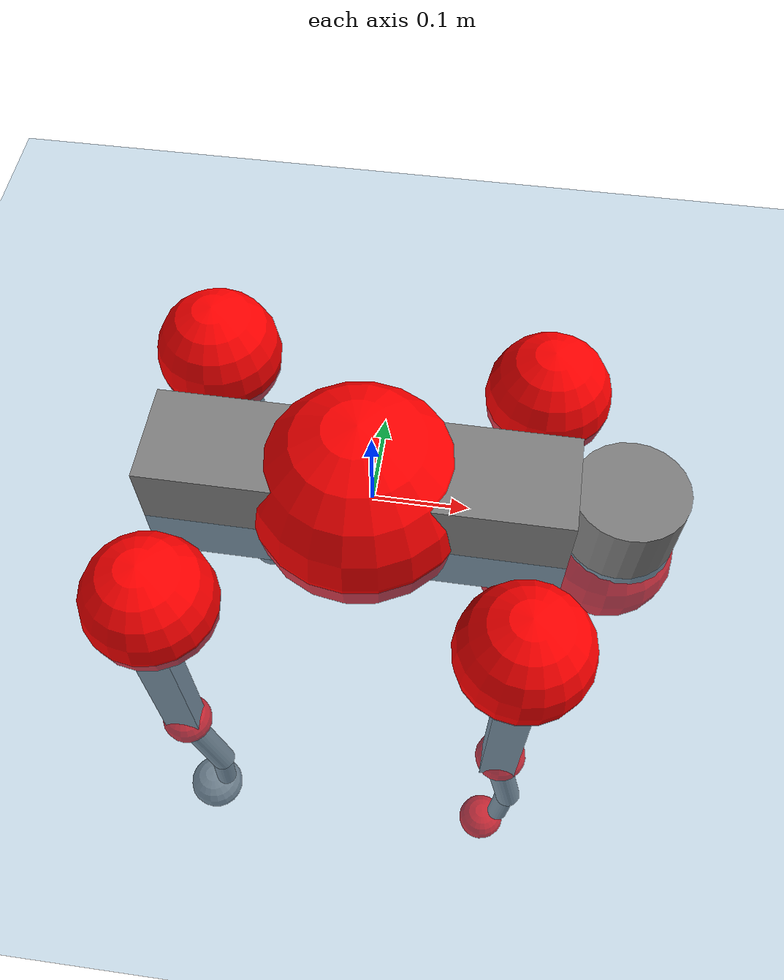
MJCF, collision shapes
<mujoco model="go2">
  <compiler angle="radian" assetdir="assets" balanceinertia="true" inertiafromgeom="false"/>

  <option timestep="0.005" density="1.2" viscosity="2e-05"/>

  <size nkey="1"/>

  <visual>
    <quality shadowsize="8192"/>
    <map shadowclip="0.5"/>
  </visual>

  <default>
    <default class="/">
      <geom contype="0" conaffinity="0" group="1" solref="-1000 -80"/>
      <site size="0.01 0.005 0.005" group="5"/>
      <general forcelimited="true" biastype="affine" gainprm="20" biasprm="0 -20 -0.5"/>
      <default class="go2">
        <joint armature="0.01" damping="0.01" frictionloss="0.2"/>
        <geom condim="1" margin="0.001"/>
        <default class="visual">
          <geom type="mesh" group="2"/>
        </default>
        <default class="collision">
          <geom group="3"/>
          <default class="foot">
            <geom size="0.022 0 0" condim="6" priority="1" friction="0.8 0.02 0.01" solimp="0.015 1 0.022"/>
          </default>
        </default>
        <default class="reward_collision_sphere">
          <geom group="5" rgba="1 0 0 1"/>
        </default>
      </default>
    </default>
  </default>

  <asset>
    <texture type="skybox" colorspace="auto" name="//unnamed_texture_0" builtin="gradient" rgb1="0.95 0.95 0.95" rgb2="0.95 0.95 0.95" width="100" height="600"/>
    <texture type="2d" colorspace="auto" name="texplane" builtin="checker" rgb1="0.345 0.575 0.748" rgb2="0.345 0.575 0.748" markrgb="1 1 1" width="512" height="512"/>
    <material name="MatPlane" class="/" texture="texplane" texuniform="true" texrepeat="2 2" specular="0.9"/>
    <material name="metal" class="/" rgba="0.9 0.95 0.95 1"/>
    <material name="black" class="/" rgba="0 0 0 1"/>
    <material name="white" class="/"/>
    <material name="gray" class="/" rgba="0.671705 0.692426 0.77427 1"/>
    <mesh name="base_0" class="/" file="base_0.obj"/>
    <mesh name="base_1" class="/" file="base_1.obj"/>
    <mesh name="base_2" class="/" file="base_2.obj"/>
    <mesh name="base_3" class="/" file="base_3.obj"/>
    <mesh name="base_4" class="/" file="base_4.obj"/>
    <mesh name="hip_0" class="/" file="hip_0.obj"/>
    <mesh name="hip_1" class="/" file="hip_1.obj"/>
    <mesh name="thigh_0" class="/" file="thigh_0.obj"/>
    <mesh name="thigh_1" class="/" file="thigh_1.obj"/>
    <mesh name="thigh_mirror_0" class="/" file="thigh_mirror_0.obj"/>
    <mesh name="thigh_mirror_1" class="/" file="thigh_mirror_1.obj"/>
    <mesh name="calf_0" class="/" file="calf_0.obj"/>
    <mesh name="calf_1" class="/" file="calf_1.obj"/>
    <mesh name="calf_mirror_0" class="/" file="calf_mirror_0.obj"/>
    <mesh name="calf_mirror_1" class="/" file="calf_mirror_1.obj"/>
    <mesh name="foot" class="/" file="foot.obj"/>
  </asset>

  <worldbody>
    <geom name="floor" class="/" size="100 100 0.125" type="plane" group="0" material="MatPlane"/>
    <light name="toplight_shadow" class="/" pos="0 0 5" dir="0.0990148 0.0990148 -0.990148" type="directional" ambient="0.04 0.04 0.04" diffuse="0.55 0.55 0.55" specular="0.12 0.12 0.12"/>
    <light name="toplight_fill" class="/" pos="0 0 5" dir="0.0990148 0.0990148 -0.990148" type="directional" castshadow="false" ambient="0.04 0.04 0.04" diffuse="0.3 0.3 0.3" specular="0.08 0.08 0.08"/>
    <body name="trunk" childclass="go2" pos="-0.0125145 -0.00101031 0.00490102" quat="0.999985 -0.00119989 -0.00199582 -0.00501953">
      <inertial pos="0.0317069 -0.00455334 -0.00582627" quat="-0.0024058 0.711691 -0.00387799 0.702478" mass="11.9717" diaginertia="0.0757926 0.439352 0.0511374"/>
      <joint name="//unnamed_joint_0" type="free" armature="0" damping="0" frictionloss="0"/>
      <geom name="//unnamed_geom_1" class="visual" material="black" mesh="base_0"/>
      <geom name="//unnamed_geom_2" class="visual" material="black" mesh="base_1"/>
      <geom name="//unnamed_geom_3" class="visual" material="black" mesh="base_2"/>
      <geom name="//unnamed_geom_4" class="visual" material="white" mesh="base_3"/>
      <geom name="//unnamed_geom_5" class="visual" material="gray" mesh="base_4"/>
      <geom name="trunk_1" class="collision" size="0.21869 0.0543527 0.0662696" type="box"/>
      <geom name="trunk_2" class="collision" size="0.0581312 0.0523181" pos="0.268641 0 0.011815" type="cylinder"/>
      <geom name="trunk_3" class="collision" size="0.0546433" pos="0.276182 0 -0.0708898"/>
      <geom name="//unnamed_geom_9" class="reward_collision_sphere" size="0.116262"/>
      <geom name="//unnamed_geom_10" class="reward_collision_sphere" size="0.0697574" pos="0.263928 0 -0.0531673"/>
      <site name="imu" pos="-0.0282394 -0.0290205 -0.00311832" size="0.0116262"/>
      <camera name="track" pos="0 -2.72755 0" quat="0.707107 0.707107 0 0" mode="trackcom"/>
      <camera name="ego_camera" pos="0.294092 0 0.0531673" quat="-0.5 -0.5 0.5 0.5"/>
      <body name="FL_hip" pos="0.184268 0.0657637 -0.0042058" quat="0.999997 0.000703258 -0.00212976 0.000730095">
        <inertial pos="-0.00632543 0.0107356 -0.000235146" quat="0.497666 0.497836 0.504275 0.500194" mass="1.11158" diaginertia="0.000544801 0.00257539 0.00110084"/>
        <joint name="FL_hip_joint" pos="0 0 0" axis="0.998115 0.0582982 -0.0191676" stiffness="0.0172619" range="-1.28774 1.03764" armature="0.0125098" damping="0" frictionloss="0.243233"/>
        <geom name="//unnamed_geom_11" class="visual" material="metal" mesh="hip_0"/>
        <geom name="//unnamed_geom_12" class="visual" material="gray" mesh="hip_1"/>
        <geom name="//unnamed_geom_13" class="collision" size="0.0534807 0.0232525" pos="0 0.109102 0" quat="0.707107 0.707107 0 0" type="cylinder"/>
        <geom name="//unnamed_geom_14" class="reward_collision_sphere" size="0.0697574" pos="0 0.0954642 0"/>
        <body name="FL_thigh" pos="-0.00516923 0.130689 -0.00603218" quat="0.999988 -0.00304357 0.00377034 -0.000543281">
          <inertial pos="-0.0113874 -0.023486 -0.0277371" quat="0.828862 0.0849236 -0.018258 0.552669" mass="1.9636" diaginertia="0.00455992 0.0306978 0.00186714"/>
          <joint name="FL_thigh_joint" pos="0 0 0" axis="0.00488431 0.999862 -0.0158935" stiffness="0.0641056" range="-1.66239 3.5147" armature="0.0142083" damping="0.011776" frictionloss="0.270214"/>
          <geom name="//unnamed_geom_15" class="visual" material="metal" mesh="thigh_0"/>
          <geom name="//unnamed_geom_16" class="visual" material="gray" mesh="thigh_1"/>
          <geom name="//unnamed_geom_17" class="collision" size="0.123819 0.0142421 0.0197646" pos="0 0 -0.125829" quat="0.707107 0 0.707107 0" type="box"/>
          <body name="FL_calf" pos="-0.00300371 0.0110065 -0.247747" quat="0.999994 -0.000425385 0.00129839 -0.00308293">
            <inertial pos="0.0152046 -0.00223713 -0.174405" quat="0.716497 0.0124731 -0.0176389 0.697255" mass="0.368555" diaginertia="0.00100426 0.00528932 9.93701e-05"/>
            <joint name="FL_calf_joint" pos="0 0 0" axis="-0.0030654 0.999871 -0.0157638" range="-2.50523 -0.813904" armature="0.00875437" damping="0.0558116" frictionloss="0.168142"/>
            <geom name="//unnamed_geom_18" class="visual" material="gray" mesh="calf_0"/>
            <geom name="//unnamed_geom_19" class="visual" material="black" mesh="calf_1"/>
            <geom name="FL_calf0" class="collision" size="0.0139515 0.0697574" pos="0.00754081 0 -0.0708898" quat="0.994493 0 -0.104807 0" type="cylinder"/>
            <geom name="//unnamed_geom_21" class="collision" size="0.0127889 0.0377853" pos="0.018852 0 -0.174861" quat="0.999688 0 0.0249974 0" type="cylinder"/>
            <geom name="//unnamed_geom_22" class="visual" pos="0 0 -0.251659" quat="1 0 0 0" material="black" mesh="foot"/>
            <geom name="FL_foot" class="foot" size="0.0180245" pos="-0.0018852 0 -0.251659"/>
            <geom name="//unnamed_geom_24" class="reward_collision_sphere" size="0.0290656"/>
            <geom name="//unnamed_geom_25" class="reward_collision_sphere" size="0.0290656" pos="-0.0018852 0 -0.251659"/>
            <site name="FL_foot" class="foot" pos="-0.0018852 0 -0.251659" size="0.0116262"/>
          </body>
        </body>
      </body>
      <body name="FR_hip" pos="0.182664 -0.0660463 0.0112133" quat="0.999991 -0.00220185 0.00338281 0.00155668">
        <inertial pos="-0.0105423 0.00756782 -0.00154564" quat="0.525487 0.523789 0.477229 0.470915" mass="1.07993" diaginertia="0.000780867 0.00301839 0.00129228"/>
        <joint name="FR_hip_joint" pos="0 0 0" axis="0.999616 0.0161548 -0.0225311" stiffness="0.00954691" range="-1.11054 1.05273" armature="0.0103219" damping="0.0139708" frictionloss="0.34511"/>
        <geom name="//unnamed_geom_26" class="visual" pos="0 1.58793e-09 6.81098e-08" quat="4.63268e-05 1 0 0" material="metal" mesh="hip_0"/>
        <geom name="//unnamed_geom_27" class="visual" pos="0 2.57423e-09 -1.68462e-07" quat="4.63268e-05 1 0 0" material="gray" mesh="hip_1"/>
        <geom name="//unnamed_geom_28" class="collision" size="0.0534807 0.0232525" pos="0 -0.109102 0" quat="0.707107 0.707107 0 0" type="cylinder"/>
        <geom name="//unnamed_geom_29" class="reward_collision_sphere" size="0.0697574" pos="0 -0.0954642 0"/>
        <body name="FR_thigh" pos="0.0011226 -0.117971 -0.00408771" quat="1 -0.000159713 -0.000779295 -0.00047971">
          <inertial pos="-0.00944952 0.038889 -0.0392339" quat="0.534634 -0.0222671 0.0567197 0.842884" mass="1.76283" diaginertia="0.00466614 0.0303693 0.0018971"/>
          <joint name="FR_thigh_joint" pos="0 0 0" axis="0.00262484 -0.999996 0.000433849" stiffness="0.0304042" range="-3.49471 1.38879" armature="0.0116391" damping="0.0190807" frictionloss="0.180231"/>
          <geom name="//unnamed_geom_30" class="visual" material="metal" mesh="thigh_mirror_0"/>
          <geom name="//unnamed_geom_31" class="visual" material="gray" mesh="thigh_mirror_1"/>
          <geom name="//unnamed_geom_32" class="collision" size="0.123819 0.0142421 0.0197646" pos="0 0 -0.125829" quat="0.707107 0 0.707107 0" type="box"/>
          <body name="FR_calf" pos="0.00246118 0.00893685 -0.248698" quat="1 -0.000118081 8.49359e-05 6.42278e-05">
            <inertial pos="0.00482423 0.0020081 -0.165404" quat="0.697163 -0.00465594 0.0531564 0.714925" mass="0.37171" diaginertia="0.00110191 0.00686993 0.000134154"/>
            <joint name="FR_calf_joint" pos="0 0 0" axis="-0.0154679 -0.998333 0.0556048" stiffness="0.049977" range="0.86308 2.56735" armature="0.0134353" damping="0" frictionloss="0.27866"/>
            <geom name="//unnamed_geom_33" class="visual" material="gray" mesh="calf_mirror_0"/>
            <geom name="//unnamed_geom_34" class="visual" material="black" mesh="calf_mirror_1"/>
            <geom name="FR_calf0" class="collision" size="0.0151141 0.0697574" pos="0.00942601 0 -0.0708898" quat="0.995004 0 -0.0998334 0" type="cylinder"/>
            <geom name="//unnamed_geom_36" class="collision" size="0.0127889 0.0377853" pos="0.018852 0 -0.174861" quat="0.999688 0 0.0249974 0" type="cylinder"/>
            <geom name="//unnamed_geom_37" class="visual" pos="0 0 -0.251659" quat="1 0 0 0" material="black" mesh="foot"/>
            <geom name="FR_foot" class="foot" size="0.0280031" pos="-0.0018852 0 -0.251659"/>
            <geom name="//unnamed_geom_39" class="reward_collision_sphere" size="0.0290656"/>
            <geom name="//unnamed_geom_40" class="reward_collision_sphere" size="0.0290656" pos="-0.0018852 0 -0.251659"/>
            <site name="FR_foot" class="foot" pos="-0.0018852 0 -0.251659" size="0.0116262"/>
          </body>
        </body>
      </body>
      <body name="RL_hip" pos="-0.1852 0.0652544 0.00866039" quat="0.999999 0.000576797 0.000901468 -2.38625e-05">
        <inertial pos="0.00138179 -0.00892066 0.00813467" quat="0.516303 0.509068 0.441698 0.528378" mass="0.90036" diaginertia="0.000653526 0.00271368 0.000942039"/>
        <joint name="RL_hip_joint" pos="0 0 0" axis="-0.999875 -0.011869 0.010418" range="-1.04804 1.17411" armature="0.0165548" damping="0.0165818" frictionloss="0.11164"/>
        <geom name="//unnamed_geom_41" class="visual" pos="2.08115e-09 0 4.07954e-07" quat="4.63268e-05 0 1 0" material="metal" mesh="hip_0"/>
        <geom name="//unnamed_geom_42" class="visual" pos="3.3738e-09 0 3.61797e-07" quat="4.63268e-05 0 1 0" material="gray" mesh="hip_1"/>
        <geom name="//unnamed_geom_43" class="collision" size="0.0534807 0.0232525" pos="0 0.109102 0" quat="0.707107 0.707107 0 0" type="cylinder"/>
        <geom name="//unnamed_geom_44" class="reward_collision_sphere" size="0.0697574" pos="0 0.0954642 0"/>
        <body name="RL_thigh" pos="0.0012818 0.140284 -0.0102755" quat="1 5.18562e-05 -4.09143e-06 6.23985e-06">
          <inertial pos="-0.0034657 -0.0315387 -0.0391216" quat="0.836987 0.0898224 -0.026654 0.539143" mass="1.50478" diaginertia="0.00438198 0.0266411 0.0017933"/>
          <joint name="RL_thigh_joint" pos="0 0 0" axis="0.00175048 0.999465 -0.0326483" range="-0.503824 4.54439" armature="0.0071007" damping="0.037878" frictionloss="0.229099"/>
          <geom name="//unnamed_geom_45" class="visual" material="metal" mesh="thigh_0"/>
          <geom name="//unnamed_geom_46" class="visual" material="gray" mesh="thigh_1"/>
          <geom name="//unnamed_geom_47" class="collision" size="0.123819 0.0142421 0.0197646" pos="0 0 -0.125829" quat="0.707107 0 0.707107 0" type="box"/>
          <body name="RL_calf" pos="0.00134794 0.00122195 -0.240448" quat="1 -0.000412682 -0.000361319 -0.00014442">
            <inertial pos="0.00922639 -0.0129269 -0.166098" quat="0.694574 0.00192485 0.0119464 0.71932" mass="0.365758" diaginertia="0.00114406 0.00674116 0.000135683"/>
            <joint name="RL_calf_joint" pos="0 0 0" axis="0.000737097 1 0.000445125" stiffness="0.0632002" range="-2.72758 -0.930054" armature="0.00843749" damping="0.0420129" frictionloss="0.0954927"/>
            <geom name="//unnamed_geom_48" class="visual" material="gray" mesh="calf_0"/>
            <geom name="//unnamed_geom_49" class="visual" material="black" mesh="calf_1"/>
            <geom name="RL_calf0" class="collision" size="0.0151141 0.0697574" pos="0.00942601 0 -0.0708898" quat="0.995004 0 -0.0998334 0" type="cylinder"/>
            <geom name="//unnamed_geom_51" class="collision" size="0.0127889 0.0377853" pos="0.018852 0 -0.174861" quat="0.999688 0 0.0249974 0" type="cylinder"/>
            <geom name="//unnamed_geom_52" class="visual" pos="0 0 -0.251659" quat="1 0 0 0" material="black" mesh="foot"/>
            <geom name="RL_foot" class="foot" size="0.0307268" pos="-0.0018852 0 -0.251659"/>
            <geom name="//unnamed_geom_54" class="reward_collision_sphere" size="0.0290656"/>
            <geom name="//unnamed_geom_55" class="reward_collision_sphere" size="0.0290656" pos="-0.0018852 0 -0.251659"/>
            <site name="RL_foot" class="foot" pos="-0.0018852 0 -0.251659" size="0.0116262"/>
          </body>
        </body>
      </body>
      <body name="RR_hip" pos="-0.185481 -0.0579841 9.5567e-05" quat="0.999984 0.00502461 0.00248393 -0.00124108">
        <inertial pos="-0.00678738 -0.0108839 0.0116479" quat="0.466602 0.514376 0.50373 0.513767" mass="1.07626" diaginertia="0.000652176 0.00279192 0.00110769"/>
        <joint name="RR_hip_joint" pos="0 0 0" axis="-0.998119 0.016168 0.0591277" range="-1.1131 1.03909" armature="0.0147293" damping="0.0114883" frictionloss="0.222511"/>
        <geom name="//unnamed_geom_56" class="visual" pos="-2.06657e-09 1.58793e-09 3.39844e-07" quat="2.14617e-09 4.63268e-05 4.63268e-05 -1" material="metal" mesh="hip_0"/>
        <geom name="//unnamed_geom_57" class="visual" pos="-3.40986e-09 2.57423e-09 5.30259e-07" quat="2.14617e-09 4.63268e-05 4.63268e-05 -1" material="gray" mesh="hip_1"/>
        <geom name="//unnamed_geom_58" class="collision" size="0.0534807 0.0232525" pos="0 -0.109102 0" quat="0.707107 0.707107 0 0" type="cylinder"/>
        <geom name="//unnamed_geom_59" class="reward_collision_sphere" size="0.0697574" pos="0 -0.0954642 0"/>
        <body name="RR_thigh" pos="0.0020837 -0.128637 0.0118703" quat="0.999999 -0.000380155 2.34074e-05 0.00127931">
          <inertial pos="-0.00369762 0.031931 -0.0383236" quat="0.55191 -0.0121231 0.0848027 0.829492" mass="2.02856" diaginertia="0.00444753 0.0250674 0.00204842"/>
          <joint name="RR_thigh_joint" pos="0 0 0" axis="-0.00172695 -0.999995 0.00275021" range="-4.5324 0.326759" armature="0.011348" damping="0.00346784" frictionloss="0.221921"/>
          <geom name="//unnamed_geom_60" class="visual" material="metal" mesh="thigh_mirror_0"/>
          <geom name="//unnamed_geom_61" class="visual" material="gray" mesh="thigh_mirror_1"/>
          <geom name="//unnamed_geom_62" class="collision" size="0.123819 0.0142421 0.0197646" pos="0 0 -0.125829" quat="0.707107 0 0.707107 0" type="box"/>
          <body name="RR_calf" pos="7.8632e-05 0.00240834 -0.256783" quat="1 5.6225e-05 0.000210866 -0.000476804">
            <inertial pos="0.013968 0.0010679 -0.168299" quat="0.689618 -0.0224744 0.0136593 0.723696" mass="0.370489" diaginertia="0.0010468 0.00696356 0.000107022"/>
            <joint name="RR_calf_joint" pos="0 0 0" axis="-0.0207874 -0.998558 -0.0494893" range="0.907594 2.69788" armature="0.0129227" damping="0" frictionloss="0.256601"/>
            <geom name="//unnamed_geom_63" class="visual" material="gray" mesh="calf_mirror_0"/>
            <geom name="//unnamed_geom_64" class="visual" material="black" mesh="calf_mirror_1"/>
            <geom name="RR_calf0" class="collision" size="0.0151141 0.0697574" pos="0.00942601 0 -0.0708898" quat="0.995004 0 -0.0998334 0" type="cylinder"/>
            <geom name="//unnamed_geom_66" class="collision" size="0.0127889 0.0377853" pos="0.018852 0 -0.174861" quat="0.999688 0 0.0249974 0" type="cylinder"/>
            <geom name="//unnamed_geom_67" class="visual" pos="0 0 -0.251659" quat="1 0 0 0" material="black" mesh="foot"/>
            <geom name="RR_foot" class="foot" size="0.0348507" pos="-0.0018852 0 -0.251659"/>
            <geom name="//unnamed_geom_69" class="reward_collision_sphere" size="0.0290656"/>
            <geom name="//unnamed_geom_70" class="reward_collision_sphere" size="0.0290656" pos="-0.0018852 0 -0.251659"/>
            <site name="RR_foot" class="foot" pos="-0.0018852 0 -0.251659" size="0.0116262"/>
          </body>
        </body>
      </body>
    </body>
  </worldbody>

  <contact>
    <pair class="/" geom1="floor" geom2="FL_foot" name="//unnamed_contact_0"/>
    <pair class="/" geom1="floor" geom2="FR_foot" name="//unnamed_contact_1"/>
    <pair class="/" geom1="floor" geom2="RL_foot" name="//unnamed_contact_2"/>
    <pair class="/" geom1="floor" geom2="RR_foot" name="//unnamed_contact_3"/>
  </contact>

  <actuator>
    <general name="FL_hip" class="/" joint="FL_hip_joint" forcerange="-27.3721 27.3721" gainprm="19.6944" biasprm="0 -19.6944 -0.691334"/>
    <general name="FL_thigh" class="/" joint="FL_thigh_joint" forcerange="-33.3642 33.3642" gainprm="19.6944" biasprm="0 -19.6944 -0.691334"/>
    <general name="FL_calf" class="/" joint="FL_calf_joint" forcerange="-52.4453 52.4453" gainprm="19.6944" biasprm="0 -19.6944 -0.691334"/>
    <general name="FR_hip" class="/" joint="FR_hip_joint" forcerange="-26.2082 26.2082" gainprm="19.6944" biasprm="0 -19.6944 -0.691334"/>
    <general name="FR_thigh" class="/" joint="FR_thigh_joint" forcerange="-21.8589 21.8589" gainprm="19.6944" biasprm="0 -19.6944 -0.691334"/>
    <general name="FR_calf" class="/" joint="FR_calf_joint" forcerange="-48.2425 48.2425" gainprm="19.6944" biasprm="0 -19.6944 -0.691334"/>
    <general name="RL_hip" class="/" joint="RL_hip_joint" forcerange="-15.6732 15.6732" gainprm="19.6944" biasprm="0 -19.6944 -0.691334"/>
    <general name="RL_thigh" class="/" joint="RL_thigh_joint" forcerange="-32.995 32.995" gainprm="19.6944" biasprm="0 -19.6944 -0.691334"/>
    <general name="RL_calf" class="/" joint="RL_calf_joint" forcerange="-75.6009 75.6009" gainprm="19.6944" biasprm="0 -19.6944 -0.691334"/>
    <general name="RR_hip" class="/" joint="RR_hip_joint" forcerange="-35.0913 35.0913" gainprm="19.6944" biasprm="0 -19.6944 -0.691334"/>
    <general name="RR_thigh" class="/" joint="RR_thigh_joint" forcerange="-16.12 16.12" gainprm="19.6944" biasprm="0 -19.6944 -0.691334"/>
    <general name="RR_calf" class="/" joint="RR_calf_joint" forcerange="-53.2052 53.2052" gainprm="19.6944" biasprm="0 -19.6944 -0.691334"/>
  </actuator>

  <sensor>
    <gyro site="imu" name="imu_angular_velocity"/>
    <velocimeter site="imu" name="imu_linear_velocity"/>
    <framelinvel objtype="site" objname="FL_foot" name="FL_foot_global_linear_velocity"/>
    <framelinvel objtype="site" objname="FR_foot" name="FR_foot_global_linear_velocity"/>
    <framelinvel objtype="site" objname="RL_foot" name="RL_foot_global_linear_velocity"/>
    <framelinvel objtype="site" objname="RR_foot" name="RR_foot_global_linear_velocity"/>
  </sensor>

  <keyframe>
    <key name="home" qpos="0 0 0.325 1 0 0 0 0.1 0.8 -1.5 -0.1 -0.8 1.5 -0.1 0.8 -1.5 0.1 -0.8 1.5"/>
  </keyframe>
</mujoco>
